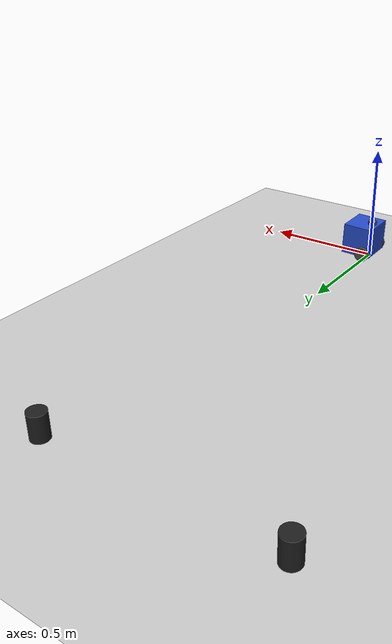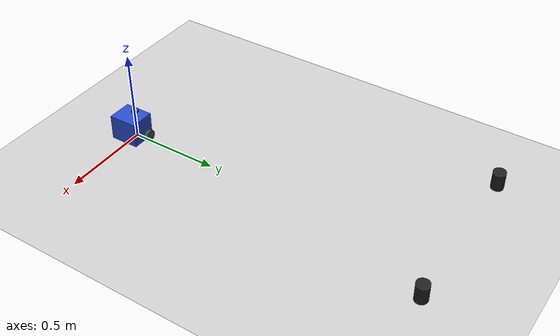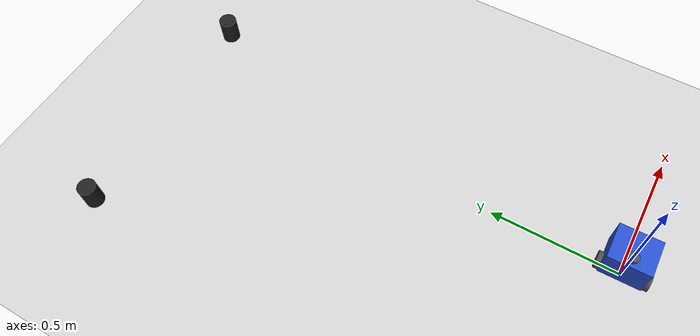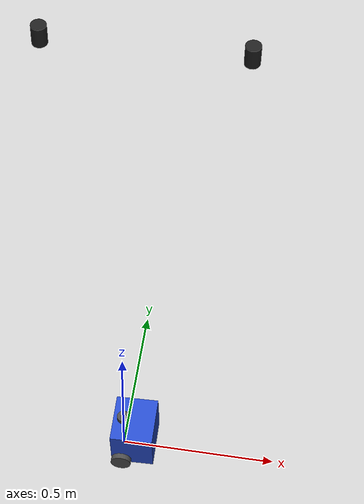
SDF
<sdf version="1.6">
 <world name="default">
  <plugin name="turtle_drive_plugin" filename="/home/peter/Desktop/Turtlebot/catkin_ws/devel/lib/libmodel_push.so"/>
  <light name="sun" type="directional">
   <pose>0 0 10 0 -0 0</pose>
   <diffuse>0.8 0.8 0.8 1</diffuse>
   <specular>0.2 0.2 0.2 1</specular>
   <attenuation>
    <range>1000</range>
    <constant>0.9</constant>
    <linear>0.01</linear>
    <quadratic>0.001</quadratic>
   </attenuation>
   <direction>-0.5 0.1 -0.9</direction>
  </light>
  <model name="ground_plane">
   <static>1</static>
   <link name="link">
    <collision name="collision">
     <geometry><plane><normal>0 0 1</normal><size>100 100</size></plane></geometry>
     <surface>
      <contact><collide_bitmask>65535</collide_bitmask></contact>
      <friction><ode><mu>100</mu><mu2>50</mu2></ode></friction>
     </surface>
    </collision>
    <visual name="visual">
     <cast_shadows>0</cast_shadows>
     <geometry><plane><normal>0 0 1</normal><size>100 100</size></plane></geometry>
     <material>
      <script><uri>file://media/materials/scripts/gazebo.material</uri><name>Gazebo/Grey</name></script>
     </material>
    </visual>
   </link>
  </model>
  <gravity>0 0 -9.8</gravity>
  <magnetic_field>6e-06 2.3e-05 -4.2e-05</magnetic_field>
  <atmosphere type="adiabatic"/>
  <physics name="default_physics" default="0" type="ode">
   <max_step_size>0.001</max_step_size>
   <real_time_factor>1</real_time_factor>
   <real_time_update_rate>1000</real_time_update_rate>
  </physics>
  <scene><ambient>0.4 0.4 0.4 1</ambient><background>0.7 0.7 0.7 1</background><shadows>1</shadows></scene>
  <spherical_coordinates>
   <surface_model>EARTH_WGS84</surface_model>
   <latitude_deg>0</latitude_deg>
   <longitude_deg>0</longitude_deg>
   <elevation>0</elevation>
   <heading_deg>0</heading_deg>
  </spherical_coordinates>
  <model name="rrbot">
   <link name="base_link">
    <inertial>
     <pose>0.041364 0 -0.007273 0 -0 0</pose>
     <mass>1.1</mass>
     <inertia>
      <ixx>0.00435248</ixx>
      <ixy>0</ixy>
      <ixz>0.000429091</ixz>
      <iyy>0.00412261</iyy>
      <iyz>0</iyz>
      <izz>0.00404079</izz>
     </inertia>
    </inertial>
    <collision name="base_link_collision">
     <pose>0.036 0 0 0 -0 0</pose>
     <geometry><box><size>0.138 0.16 0.14</size></box></geometry>
    </collision>
    <collision name="base_link_fixed_joint_lump__caster_collision_1">
     <pose>0.095 0 -0.08 0 -0 0</pose>
     <geometry><sphere><radius>0.01</radius></sphere></geometry>
     <surface>
      <contact><ode><kp>1e+06</kp><kd>100</kd><max_vel>1</max_vel><min_depth>0.001</min_depth></ode></contact>
      <friction><ode><mu>0.1</mu><mu2>0.1</mu2></ode></friction>
     </surface>
    </collision>
    <visual name="base_link_visual">
     <pose>0.036 0 0 0 -0 0</pose>
     <geometry><box><size>0.138 0.16 0.14</size></box></geometry>
     <material>
      <script><name>Gazebo/BlueLaser</name><uri>file://media/materials/scripts/gazebo.material</uri></script>
     </material>
    </visual>
    <visual name="base_link_fixed_joint_lump__caster_visual_1">
     <pose>0.095 0 -0.08 0 -0 0</pose>
     <geometry><sphere><radius>0.01</radius></sphere></geometry>
     <material>
      <script><name>Gazebo/DarkGrey</name><uri>file://media/materials/scripts/gazebo.material</uri></script>
     </material>
    </visual>
    <visual name="base_link_fixed_joint_lump__base_scan_visual_2">
     <pose>0 0 0.0775 0 -0 0</pose>
     <geometry><cylinder><length>0.015</length><radius>0.02</radius></cylinder></geometry>
     <material>
      <script><name>Gazebo/DarkGrey</name><uri>file://media/materials/scripts/gazebo.material</uri></script>
     </material>
    </visual>
   </link>
   <link name="left_wheel">
    <pose>0 0.08 -0.053 0 -0 0</pose>
    <inertial>
     <pose>0 0.009 0 1.57 -0 0</pose>
     <mass>0.1</mass>
     <inertia>
      <ixx>2.9925e-05</ixx>
      <ixy>0</ixy>
      <ixz>0</ixz>
      <iyy>5.445e-05</iyy>
      <iyz>0</iyz>
      <izz>2.9925e-05</izz>
     </inertia>
    </inertial>
    <collision name="left_wheel_collision">
     <pose>0 0.009 0 1.57 -0 0</pose>
     <geometry><cylinder><length>0.018</length><radius>0.033</radius></cylinder></geometry>
     <surface>
      <contact><ode><kp>500000</kp><kd>10</kd><max_vel>0.1</max_vel></ode></contact>
      <friction><ode><mu>0.1</mu><mu2>0.1</mu2></ode></friction>
     </surface>
    </collision>
    <visual name="left_wheel_visual">
     <pose>0 0.009 0 1.57 -0 0</pose>
     <geometry><cylinder><length>0.018</length><radius>0.033</radius></cylinder></geometry>
     <material>
      <script><name>Gazebo/DarkGrey</name><uri>file://media/materials/scripts/gazebo.material</uri></script>
     </material>
    </visual>
   </link>
   <joint name="left_wheel_axle" type="revolute">
    <child>left_wheel</child>
    <parent>base_link</parent>
    <axis>
     <xyz>0 1 0</xyz>
     <limit><lower>-1e+16</lower><upper>1e+16</upper></limit>
     <dynamics><spring_reference>0</spring_reference><spring_stiffness>0</spring_stiffness></dynamics>
     <use_parent_model_frame>1</use_parent_model_frame>
    </axis>
   </joint>
   <link name="right_wheel">
    <pose>0 -0.08 -0.053 0 -0 0</pose>
    <inertial>
     <pose>0 -0.009 0 1.57 -0 0</pose>
     <mass>0.1</mass>
     <inertia>
      <ixx>2.9925e-05</ixx>
      <ixy>0</ixy>
      <ixz>0</ixz>
      <iyy>5.445e-05</iyy>
      <iyz>0</iyz>
      <izz>2.9925e-05</izz>
     </inertia>
    </inertial>
    <collision name="right_wheel_collision">
     <pose>0 -0.009 0 1.57 -0 0</pose>
     <geometry><cylinder><length>0.018</length><radius>0.033</radius></cylinder></geometry>
     <surface>
      <contact><ode><kp>500000</kp><kd>10</kd><max_vel>0.1</max_vel></ode></contact>
      <friction><ode><mu>0.1</mu><mu2>0.1</mu2></ode></friction>
     </surface>
    </collision>
    <visual name="right_wheel_visual">
     <pose>0 -0.009 0 1.57 -0 0</pose>
     <geometry><cylinder><length>0.018</length><radius>0.033</radius></cylinder></geometry>
     <material>
      <script><name>Gazebo/DarkGrey</name><uri>file://media/materials/scripts/gazebo.material</uri></script>
     </material>
    </visual>
   </link>
   <joint name="right_wheel_axle" type="revolute">
    <child>right_wheel</child>
    <parent>base_link</parent>
    <axis>
     <xyz>0 1 0</xyz>
     <limit><lower>-1e+16</lower><upper>1e+16</upper></limit>
     <dynamics><spring_reference>0</spring_reference><spring_stiffness>0</spring_stiffness></dynamics>
     <use_parent_model_frame>1</use_parent_model_frame>
    </axis>
   </joint>
   <pose>0.000634 -0.00143 0.085972 7e-06 -0.031413 0.017414</pose>
  </model>
  <model name="cylinder">
   <link name="link">
    <inertial>
     <mass>1</mass>
     <inertia><ixx>0.145833</ixx><ixy>0</ixy><ixz>0</ixz><iyy>0.145833</iyy><iyz>0</iyz><izz>0.125</izz></inertia>
    </inertial>
    <visual name="visual">
     <geometry><cylinder><radius>0.035</radius><length>0.2</length></cylinder></geometry>
     <material>
      <script><name>Gazebo/Black</name><uri>file://media/materials/scripts/gazebo.material</uri></script>
      <shader type="vertex"><normal_map>__default__</normal_map></shader>
      <ambient>0.3 0.3 0.3 1</ambient>
      <diffuse>0.7 0.7 0.7 1</diffuse>
      <specular>0.01 0.01 0.01 1</specular>
      <emissive>0 0 0 1</emissive>
     </material>
    </visual>
    <collision name="collision">
     <geometry><cylinder><radius>0.035</radius><length>0.2</length></cylinder></geometry>
     <surface>
      <friction>
       <ode><mu>1</mu><mu2>1</mu2><fdir1>0 0 0</fdir1><slip1>0</slip1><slip2>0</slip2></ode>
       <torsional>
        <coefficient>1</coefficient>
        <patch_radius>0</patch_radius>
        <surface_radius>0</surface_radius>
        <use_patch_radius>1</use_patch_radius>
        <ode><slip>0</slip></ode>
       </torsional>
      </friction>
      <bounce><restitution_coefficient>0</restitution_coefficient><threshold>1e+06</threshold></bounce>
      <contact>
       <collide_without_contact>0</collide_without_contact>
       <collide_without_contact_bitmask>1</collide_without_contact_bitmask>
       <collide_bitmask>1</collide_bitmask>
       <ode>
        <soft_cfm>0</soft_cfm>
        <soft_erp>0.2</soft_erp>
        <kp>1e+13</kp>
        <kd>1</kd>
        <max_vel>0.01</max_vel>
        <min_depth>0</min_depth>
       </ode>
       <bullet>
        <split_impulse>1</split_impulse>
        <split_impulse_penetration_threshold>-0.01</split_impulse_penetration_threshold>
        <soft_cfm>0</soft_cfm>
        <soft_erp>0.2</soft_erp>
        <kp>1e+13</kp>
        <kd>1</kd>
       </bullet>
      </contact>
     </surface>
    </collision>
   </link>
   <static>1</static>
   <pose>0.230022 1.84095 0 0 -0 0</pose>
  </model>
  <model name="cylinder_0">
   <link name="link">
    <inertial>
     <mass>1</mass>
     <inertia><ixx>0.145833</ixx><ixy>0</ixy><ixz>0</ixz><iyy>0.145833</iyy><iyz>0</iyz><izz>0.125</izz></inertia>
    </inertial>
    <visual name="visual">
     <geometry><cylinder><radius>0.035</radius><length>0.2</length></cylinder></geometry>
     <material>
      <script><name>Gazebo/Black</name><uri>file://media/materials/scripts/gazebo.material</uri></script>
      <shader type="vertex"><normal_map>__default__</normal_map></shader>
      <ambient>0.3 0.3 0.3 1</ambient>
      <diffuse>0.7 0.7 0.7 1</diffuse>
      <specular>0.01 0.01 0.01 1</specular>
      <emissive>0 0 0 1</emissive>
     </material>
    </visual>
    <collision name="collision">
     <geometry><cylinder><radius>0.035</radius><length>0.2</length></cylinder></geometry>
     <surface>
      <friction>
       <ode><mu>1</mu><mu2>1</mu2><fdir1>0 0 0</fdir1><slip1>0</slip1><slip2>0</slip2></ode>
       <torsional>
        <coefficient>1</coefficient>
        <patch_radius>0</patch_radius>
        <surface_radius>0</surface_radius>
        <use_patch_radius>1</use_patch_radius>
        <ode><slip>0</slip></ode>
       </torsional>
      </friction>
      <bounce><restitution_coefficient>0</restitution_coefficient><threshold>1e+06</threshold></bounce>
      <contact>
       <collide_without_contact>0</collide_without_contact>
       <collide_without_contact_bitmask>1</collide_without_contact_bitmask>
       <collide_bitmask>1</collide_bitmask>
       <ode>
        <soft_cfm>0</soft_cfm>
        <soft_erp>0.2</soft_erp>
        <kp>1e+13</kp>
        <kd>1</kd>
        <max_vel>0.01</max_vel>
        <min_depth>0</min_depth>
       </ode>
       <bullet>
        <split_impulse>1</split_impulse>
        <split_impulse_penetration_threshold>-0.01</split_impulse_penetration_threshold>
        <soft_cfm>0</soft_cfm>
        <soft_erp>0.2</soft_erp>
        <kp>1e+13</kp>
        <kd>1</kd>
       </bullet>
      </contact>
     </surface>
    </collision>
   </link>
   <static>1</static>
   <pose>-0.670934 1.82593 0 0 -0 0</pose>
  </model>
 </world>
</sdf>
